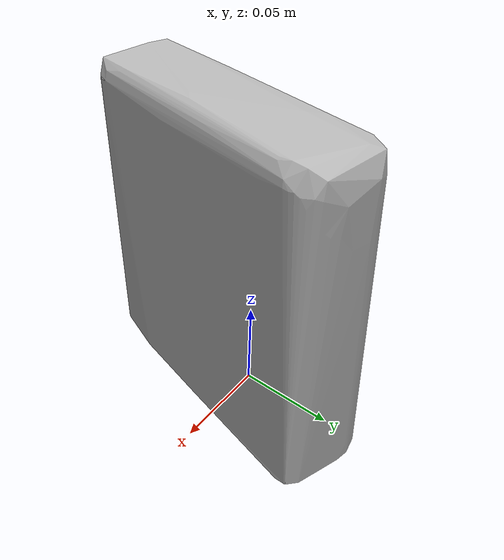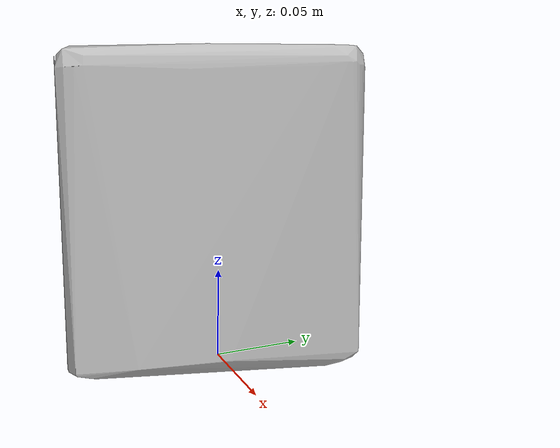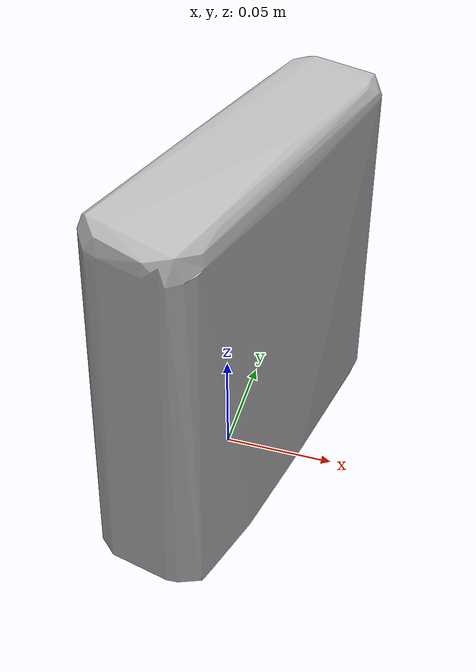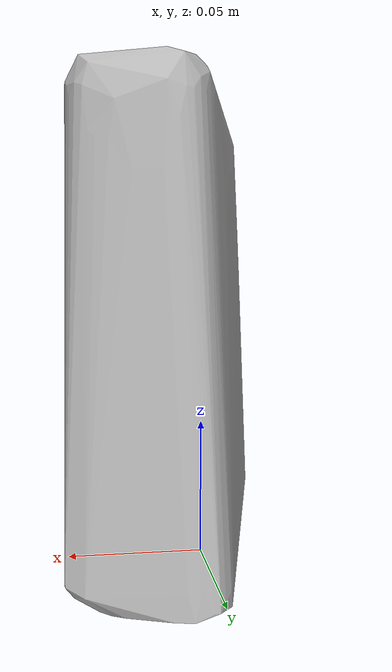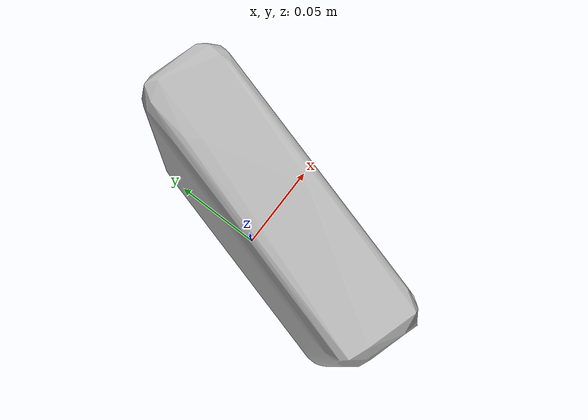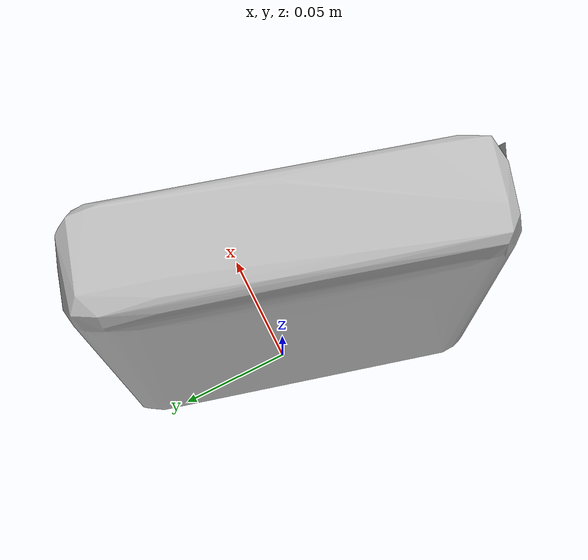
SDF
<?xml version='1.0'?>
<sdf version="1.4">
  <model name="quaker_chewy_chocolate_chip">
    <static>false</static>
    <link name="link">
      <inertial>
        <pose>0.010147714173093632 -0.008417057088189246 0.08488564853730658 -3.1149743842446735 -0.017914086685439264 2.8760651645428124</pose>
        <mass>0.11759022733283499</mass>
        <inertia>
          <ixx>0.00047427344826689744</ixx>
          <ixy>3.1773772335347774e-20</ixy>
          <ixz>4.059972314233661e-21</ixz>
          <iyy>0.0002811187668850826</iyy>
          <iyz>-2.789209008875009e-22</iyz>
          <izz>0.00023779823403692133</izz>
        </inertia>
      </inertial>
      <collision name="collision">
        <geometry>
          <mesh>
            <!-- Use a downsampled mesh for collisions -->
            <uri>model:///quaker_chewy_chocolate_chip/quaker_chewy_chocolate_chip_250_collision.obj</uri>
	        </mesh>
        </geometry>
        <surface>
      </surface>
      </collision>
      <visual name="visual">
        <geometry>
          <mesh>
            <uri>model:///quaker_chewy_chocolate_chip/optimized_tsdf_texture_mapped_mesh.obj</uri>
	        </mesh>
        </geometry>
        <material>
          <script>
            <uri>model:///quaker_chewy_chocolate_chip/quaker_chewy_chocolate_chip.material</uri>
            <name>quaker_chewy_chocolate_chip</name>
          </script>
        </material>
      </visual>
    </link>
  </model>
</sdf>
